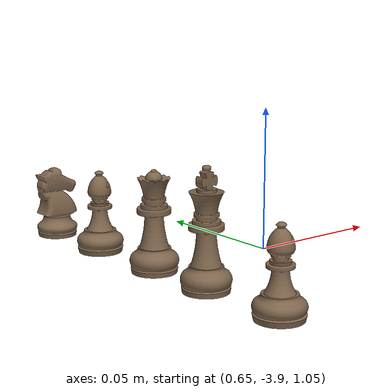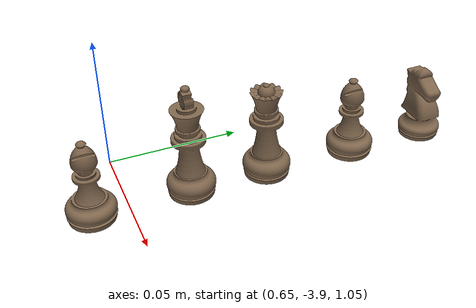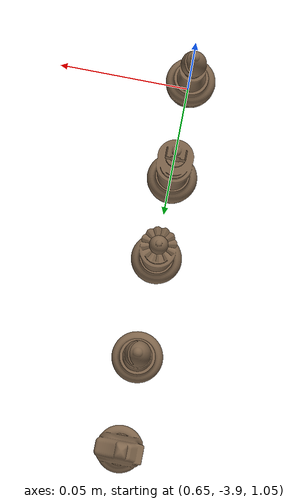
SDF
<sdf version="1.7">
 <world name="default">
  <model name="ground_plane">
   <static>1</static>
   <link name="link">
    <collision name="collision">
     <geometry><plane><normal>0 0 1</normal><size>100 100</size></plane></geometry>
     <surface>
      <contact><collide_bitmask>65535</collide_bitmask></contact>
      <friction><ode><mu>100</mu><mu2>50</mu2></ode></friction>
     </surface>
    </collision>
    <visual name="visual">
     <cast_shadows>0</cast_shadows>
     <geometry><plane><normal>0 0 1</normal><size>100 100</size></plane></geometry>
     <material>
      <script><uri>file://media/materials/scripts/gazebo.material</uri><name>Gazebo/Grey</name></script>
     </material>
    </visual>
   </link>
  </model>
  <model name="king_white">
   <static>0</static>
   <link name="link_0">
    <inertial>
     <mass>1</mass>
     <inertia>
      <ixx>0.166667</ixx>
      <ixy>0</ixy>
      <ixz>0</ixz>
      <iyy>0.166667</iyy>
      <iyz>0</iyz>
      <izz>0.166667</izz>
     </inertia>
    </inertial>
    <kinematic>1</kinematic>
    <visual name="visual">
     <geometry><mesh><uri>model://king_white/meshes/king.dae</uri><scale>1 1 1</scale></mesh></geometry>
     <material>
      <lighting>1</lighting>
      <script><uri>file://media/materials/scripts/gazebo.material</uri><name>Gazebo/Grey</name></script>
      <shader type="vertex"><normal_map>__default__</normal_map></shader>
      <ambient>1 0.894 0.71 1</ambient>
      <diffuse>0.5 0.4 0.3 1</diffuse>
      <specular>0.01 0.01 0.01 1</specular>
      <emissive>0 0 0 1</emissive>
     </material>
    </visual>
    <collision name="collision">
     <pose>0 0 0.015 0 -0 0</pose>
     <geometry><cylinder><radius>0.005</radius><length>0.03</length></cylinder></geometry>
     <surface>
      <friction><ode><mu>1</mu><mu2>1</mu2></ode></friction>
      <contact><ode><kp>1e+07</kp><kd>1</kd><max_vel>0.001</max_vel><min_depth>0.1</min_depth></ode></contact>
     </surface>
    </collision>
   </link>
   <pose>0.649589 -3.86874 1.02621 0 -0 0</pose>
  </model>
  <model name="queen_white">
   <static>0</static>
   <link name="link_0">
    <inertial>
     <mass>0.01</mass>
     <inertia><ixx>1e-06</ixx><ixy>0</ixy><ixz>0</ixz><iyy>1e-06</iyy><iyz>0</iyz><izz>5e-07</izz></inertia>
    </inertial>
    <kinematic>1</kinematic>
    <visual name="visual">
     <geometry><mesh><uri>model://queen_white/meshes/queen.dae</uri><scale>1 1 1</scale></mesh></geometry>
     <material>
      <lighting>1</lighting>
      <script><uri>file://media/materials/scripts/gazebo.material</uri><name>Gazebo/Grey</name></script>
      <shader type="vertex"><normal_map>__default__</normal_map></shader>
      <ambient>1 0.894 0.71 1</ambient>
      <diffuse>0.5 0.4 0.3 1</diffuse>
      <specular>0.01 0.01 0.01 1</specular>
      <emissive>0 0 0 1</emissive>
     </material>
    </visual>
    <collision name="collision">
     <pose>0 0 0.015 0 -0 0</pose>
     <geometry><cylinder><radius>0.005</radius><length>0.03</length></cylinder></geometry>
     <surface>
      <friction><ode><mu>1</mu><mu2>1</mu2></ode></friction>
      <contact><ode><kp>1e+07</kp><kd>1</kd><max_vel>0.001</max_vel><min_depth>0.1</min_depth></ode></contact>
     </surface>
    </collision>
   </link>
   <pose>0.649589 -3.83568 1.02621 0 -0 0</pose>
  </model>
  <model name="bishop_white">
   <static>0</static>
   <link name="link_0">
    <inertial>
     <mass>0.01</mass>
     <inertia><ixx>1e-06</ixx><ixy>0</ixy><ixz>0</ixz><iyy>1e-06</iyy><iyz>0</iyz><izz>5e-07</izz></inertia>
    </inertial>
    <kinematic>1</kinematic>
    <visual name="visual">
     <geometry><mesh><uri>model://bishop_white/meshes/bishop.dae</uri><scale>1 1 1</scale></mesh></geometry>
     <material>
      <lighting>1</lighting>
      <script><uri>file://media/materials/scripts/gazebo.material</uri><name>Gazebo/Grey</name></script>
      <shader type="vertex"><normal_map>__default__</normal_map></shader>
      <ambient>1 0.894 0.71 1</ambient>
      <diffuse>0.5 0.4 0.3 1</diffuse>
      <specular>0.01 0.01 0.01 1</specular>
      <emissive>0 0 0 1</emissive>
     </material>
    </visual>
    <collision name="collision">
     <geometry>
      <mesh>
       <uri>/home/colin/chessrobot_simulation/catkin_ws/src/chessrobot_simulation/models/bishop_white/meshes/bishop.dae</uri>
       <scale>1 1 1</scale>
      </mesh>
     </geometry>
     <surface>
      <friction><ode><mu>1</mu><mu2>1</mu2></ode></friction>
      <contact>
       <collide_without_contact>0</collide_without_contact>
       <collide_without_contact_bitmask>1</collide_without_contact_bitmask>
       <collide_bitmask>1</collide_bitmask>
       <ode><kp>1e+07</kp><kd>1</kd><max_vel>0.001</max_vel><min_depth>0.1</min_depth></ode>
      </contact>
     </surface>
    </collision>
   </link>
   <pose>0.649589 -3.79632 1.02621 0 -0 0</pose>
  </model>
  <model name="bishop_white_clone_0">
   <static>0</static>
   <link name="link_0">
    <inertial>
     <mass>0.01</mass>
     <inertia><ixx>1e-06</ixx><ixy>0</ixy><ixz>0</ixz><iyy>1e-06</iyy><iyz>0</iyz><izz>5e-07</izz></inertia>
    </inertial>
    <kinematic>1</kinematic>
    <visual name="visual">
     <geometry><mesh><uri>model://bishop_white/meshes/bishop.dae</uri><scale>1 1 1</scale></mesh></geometry>
     <material>
      <lighting>1</lighting>
      <script><uri>file://media/materials/scripts/gazebo.material</uri><name>Gazebo/Grey</name></script>
      <shader type="vertex"><normal_map>__default__</normal_map></shader>
      <ambient>1 0.894 0.71 1</ambient>
      <diffuse>0.5 0.4 0.3 1</diffuse>
      <specular>0.01 0.01 0.01 1</specular>
      <emissive>0 0 0 1</emissive>
     </material>
    </visual>
    <collision name="collision">
     <pose>0 0 0.015 0 -0 0</pose>
     <geometry><cylinder><radius>0.005</radius><length>0.03</length></cylinder></geometry>
     <surface>
      <friction><ode><mu>1</mu><mu2>1</mu2></ode></friction>
      <contact>
       <collide_without_contact>0</collide_without_contact>
       <collide_without_contact_bitmask>1</collide_without_contact_bitmask>
       <collide_bitmask>1</collide_bitmask>
       <ode><kp>1e+07</kp><kd>1</kd><max_vel>0.001</max_vel><min_depth>0.1</min_depth></ode>
      </contact>
     </surface>
    </collision>
   </link>
   <pose>0.649589 -3.90934 1.02621 0 -0 0</pose>
  </model>
  <model name="knight_white_clone">
   <static>0</static>
   <link name="link_0">
    <inertial>
     <mass>0.01</mass>
     <inertia><ixx>1e-06</ixx><ixy>0</ixy><ixz>0</ixz><iyy>1e-06</iyy><iyz>0</iyz><izz>5e-07</izz></inertia>
    </inertial>
    <kinematic>1</kinematic>
    <visual name="visual">
     <geometry><mesh><uri>model://knight_white/meshes/knight.dae</uri><scale>1 1 1</scale></mesh></geometry>
     <material>
      <lighting>1</lighting>
      <script><uri>file://media/materials/scripts/gazebo.material</uri><name>Gazebo/Grey</name></script>
      <shader type="vertex"><normal_map>__default__</normal_map></shader>
      <ambient>1 0.894 0.71 1</ambient>
      <diffuse>0.5 0.4 0.3 1</diffuse>
      <specular>0.01 0.01 0.01 1</specular>
      <emissive>0 0 0 1</emissive>
     </material>
    </visual>
    <collision name="collision">
     <pose>0 0 0.015 0 -0 0</pose>
     <geometry><cylinder><radius>0.005</radius><length>0.03</length></cylinder></geometry>
     <surface>
      <friction><ode><mu>1</mu><mu2>1</mu2></ode></friction>
      <contact><ode><kp>1e+07</kp><kd>1</kd><max_vel>0.001</max_vel><min_depth>0.1</min_depth></ode></contact>
     </surface>
    </collision>
   </link>
   <pose>0.64968 -3.76045 1.02621 0 -0 1.57236</pose>
  </model>
 </world>
</sdf>
